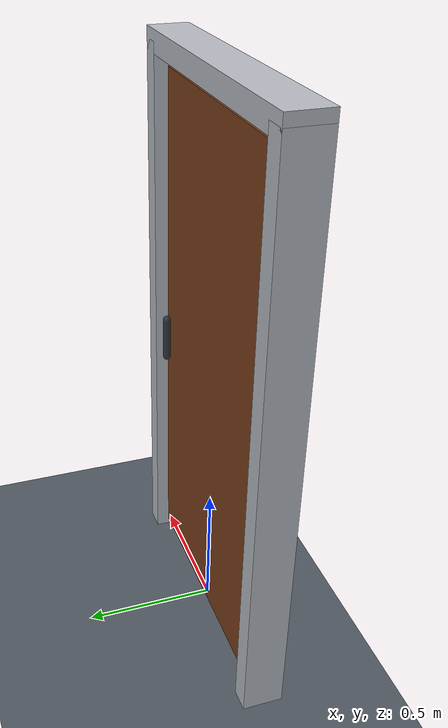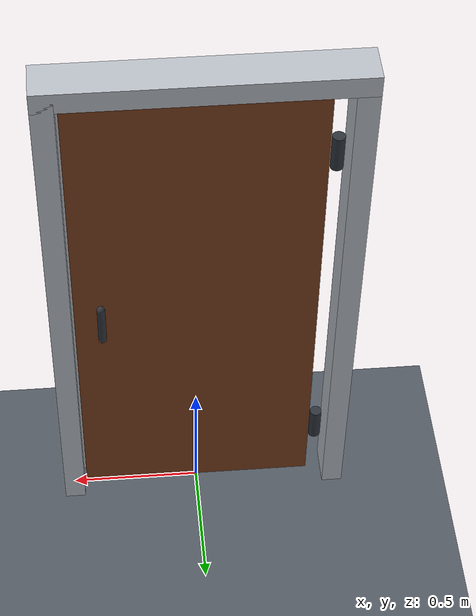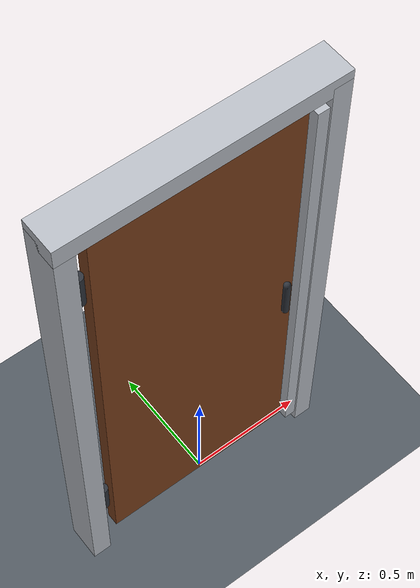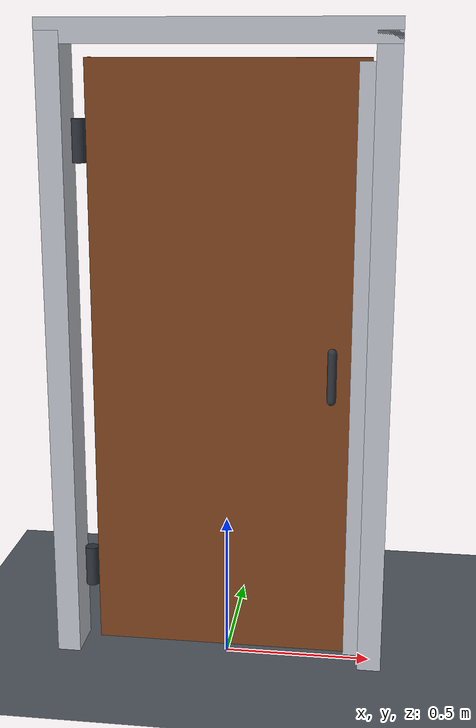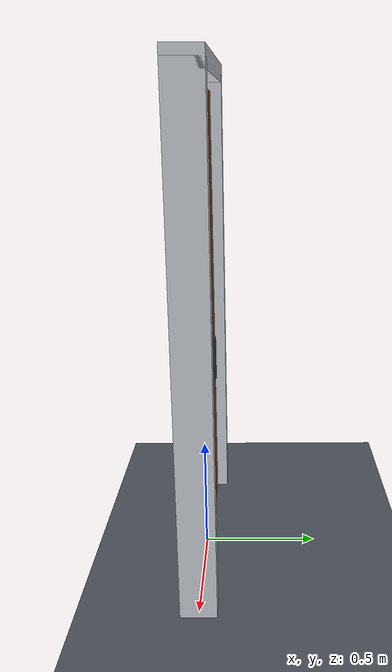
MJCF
<mujoco model="self_closing_door">
  <compiler angle="degree" inertiafromgeom="auto"/>
  <option timestep="0.002" gravity="0 0 -9.81" integrator="implicitfast"/>

  <asset>
    <material name="floor_material" rgba="0.32 0.35 0.38 1"/>
    <material name="frame_material" rgba="0.72 0.74 0.77 1"/>
    <material name="door_material" rgba="0.48 0.25 0.11 1"/>
    <material name="metal_material" rgba="0.18 0.20 0.23 1"/>
  </asset>

  <worldbody>
    <light name="main_light" pos="0 -3 5" dir="0 0.5 -1"/>
    <camera name="overview" pos="3 -4 2.8" xyaxes="0.8 0.6 0 -0.27 0.36 0.89"/>

    <geom name="floor" type="plane" size="5 5 0.1" material="floor_material"/>

    <body name="frame" pos="0 0 0">
      <geom name="left_jamb" type="box" pos="-0.555 0 1.06" size="0.04 0.075 1.06" material="frame_material"/>
      <geom name="right_jamb" type="box" pos="0.50 0 1.06" size="0.04 0.075 1.06" material="frame_material"/>
      <geom name="header" type="box" pos="-0.0275 0 2.12" size="0.5675 0.075 0.04" material="frame_material"/>

      <!-- The leaf meets this stop at hinge angle zero. -->
      <geom name="closing_stop" type="box" pos="0.435 -0.0475 1.04" size="0.025 0.02 0.99" material="frame_material" friction="0.6 0.005 0.0001" solref="0.008 1" solimp="0.95 0.99 0.001"/>

      <geom name="lower_hinge_barrel" type="cylinder" pos="-0.48 0 0.30" size="0.023 0.07" material="metal_material"/>
      <geom name="upper_hinge_barrel" type="cylinder" pos="-0.48 0 1.78" size="0.023 0.07" material="metal_material"/>
    </body>

    <body name="door" pos="-0.48 0 1.04">
      <!-- A preloaded torsion spring closes the door and holds it against the stop. -->
      <joint name="hinge" type="hinge" pos="0 0 0" axis="0 0 1" limited="true" range="0 100" stiffness="18" springref="-5" damping="12" armature="0.02" solreflimit="0.008 1" solimplimit="0.95 0.99 0.001"/>

      <geom name="door_leaf" type="box" pos="0.48 0 0" size="0.45 0.0275 1.0" mass="12" material="door_material" friction="0.6 0.005 0.0001" solref="0.008 1" solimp="0.95 0.99 0.001"/>
      <geom name="front_handle" type="capsule" fromto="0.83 -0.065 -0.08 0.83 -0.065 0.08" size="0.015" mass="0.12" material="metal_material"/>
      <geom name="rear_handle" type="capsule" fromto="0.83 0.065 -0.08 0.83 0.065 0.08" size="0.015" mass="0.12" material="metal_material"/>
    </body>
  </worldbody>

  <keyframe>
    <key name="start" qpos="1.2217304764" qvel="0"/>
  </keyframe>
</mujoco>
